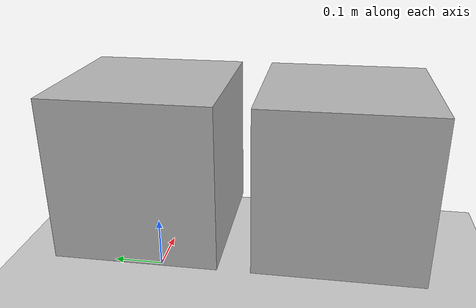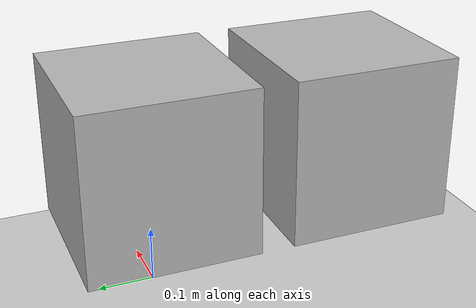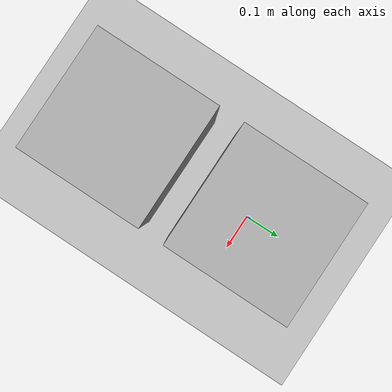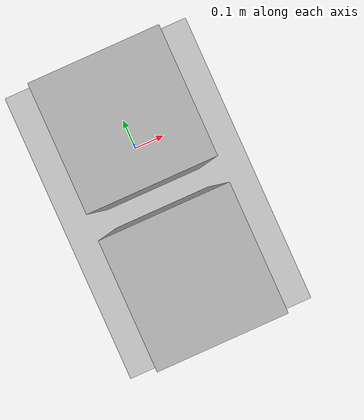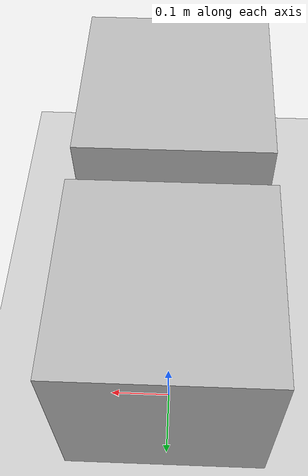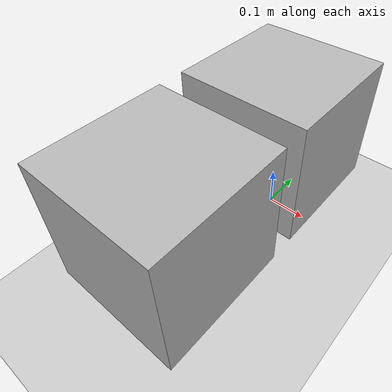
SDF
<?xml version="1.0"?>
<sdf version="1.6">
  <world name="default">

    <plugin name="contact_world_plugin" filename="libContactWorldPlugin.so">
      <topic>grasp/contact/world</topic>
    </plugin>

    <physics type="dart">
      <max_step_size>0.001000</max_step_size>
      <real_time_update_rate>10000.000000</real_time_update_rate>
    </physics>

    <include>
      <uri>model://ground_plane</uri>
    </include>

    <include>
      <uri>model://sun</uri>
    </include>

    <model name="box">
      <pose>0 0 0.25 0 0 0</pose>
      <link name="link">
        <inertial>
          <mass>5550.05</mass>
          <inertia>
            <ixx>0.0083</ixx><ixy>0.0</ixy><ixz>0.0</ixz>
            <iyy>0.0083</iyy><iyz>0.0</iyz>
            <izz>0.0083</izz>
          </inertia>
        </inertial>
        <collision name="box_collision">
          <geometry>
            <box>
              <size>0.3 0.3 0.3</size>
            </box>
          </geometry>
          <surface>
            <friction>
              <ode>
                <mu>0.5</mu>
                <mu2>0.5</mu2>
              </ode>
            </friction>
          </surface>
        </collision>
        <visual name="visual">
          <geometry>
            <box>
              <size>0.3 0.3 0.3</size>
            </box>
          </geometry>
        </visual>
      </link>
    </model>

    <model name="box1">
      <pose>0 -0.36 0.25 0 0 0</pose>
      <link name="link">
        <inertial>
          <mass>5550.05</mass>
          <inertia>
            <ixx>0.0083</ixx><ixy>0.0</ixy><ixz>0.0</ixz>
            <iyy>0.0083</iyy><iyz>0.0</iyz>
            <izz>0.0083</izz>
          </inertia>
        </inertial>
        <collision name="box_collision">
          <geometry>
            <box>
              <size>0.3 0.3 0.3</size>
            </box>
          </geometry>
          <surface>
            <friction>
              <ode>
                <mu>0.5</mu>
                <mu2>0.5</mu2>
              </ode>
            </friction>
          </surface>
        </collision>
        <visual name="visual">
          <geometry>
            <box>
              <size>0.3 0.3 0.3</size>
            </box>
          </geometry>
        </visual>
      </link>
    </model>

  </world>
</sdf>
